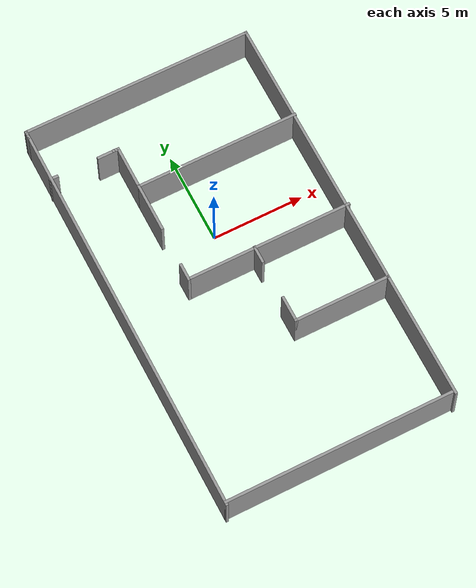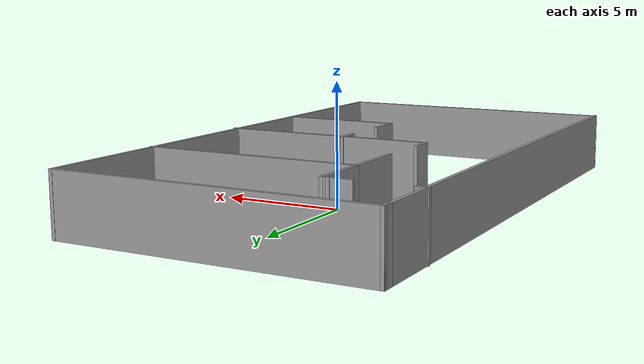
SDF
<?xml version='1.0'?>
<sdf version='1.6'>
  <model name='similar_home'>
    <pose frame=''>-0.008019 -2.54677 0 0 -0 0</pose>
    <link name='Wall_36'>
      <collision name='Wall_36_Collision'>
        <geometry>
          <box>
            <size>22.2411 0.15 2.5</size>
          </box>
        </geometry>
        <pose frame=''>0 0 1.25 0 -0 0</pose>
      </collision>
      <visual name='Wall_36_Visual'>
        <pose frame=''>0 0 1.25 0 -0 0</pose>
        <geometry>
          <box>
            <size>22.2411 0.15 2.5</size>
          </box>
        </geometry>
        <material>
          <script>
            <uri>file://media/materials/scripts/gazebo.material</uri>
            <name>Gazebo/Grey</name>
          </script>
          <ambient>1 1 1 1</ambient>
        </material>
        <meta>
          <layer>0</layer>
        </meta>
      </visual>
      <pose frame=''>-6.31271 -0.124102 0 0 -0 -1.5708</pose>
    </link>
    <link name='Wall_37'>
      <collision name='Wall_37_Collision'>
        <geometry>
          <box>
            <size>12.6951 0.15 2.5</size>
          </box>
        </geometry>
        <pose frame=''>0 0 1.25 0 -0 0</pose>
      </collision>
      <visual name='Wall_37_Visual'>
        <pose frame=''>0 0 1.25 0 -0 0</pose>
        <geometry>
          <box>
            <size>12.6951 0.15 2.5</size>
          </box>
        </geometry>
        <material>
          <script>
            <uri>file://media/materials/scripts/gazebo.material</uri>
            <name>Gazebo/Grey</name>
          </script>
          <ambient>1 1 1 1</ambient>
        </material>
        <meta>
          <layer>0</layer>
        </meta>
      </visual>
      <pose frame=''>-0.040178 -11.0513 0 0 -0 -0.000367</pose>
    </link>
    <link name='Wall_38'>
      <collision name='Wall_38_Collision'>
        <geometry>
          <box>
            <size>22.4985 0.15 2.5</size>
          </box>
        </geometry>
        <pose frame=''>0 0 1.25 0 -0 0</pose>
      </collision>
      <visual name='Wall_38_Visual'>
        <pose frame=''>0 0 1.25 0 -0 0</pose>
        <geometry>
          <box>
            <size>22.4985 0.15 2.5</size>
          </box>
        </geometry>
        <material>
          <script>
            <uri>file://media/materials/scripts/gazebo.material</uri>
            <name>Gazebo/Grey</name>
          </script>
          <ambient>1 1 1 1</ambient>
        </material>
        <meta>
          <layer>0</layer>
        </meta>
      </visual>
      <pose frame=''>6.23236 0 0 0 -0 1.5708</pose>
    </link>
    <link name='Wall_39'>
      <collision name='Wall_39_Collision'>
        <geometry>
          <box>
            <size>12.6951 0.15 2.5</size>
          </box>
        </geometry>
        <pose frame=''>0 0 1.25 0 -0 0</pose>
      </collision>
      <visual name='Wall_39_Visual'>
        <pose frame=''>0 0 1.25 0 -0 0</pose>
        <geometry>
          <box>
            <size>12.6951 0.15 2.5</size>
          </box>
        </geometry>
        <material>
          <script>
            <uri>file://media/materials/scripts/gazebo.material</uri>
            <name>Gazebo/Grey</name>
          </script>
          <ambient>1 1 1 1</ambient>
        </material>
        <meta>
          <layer>0</layer>
        </meta>
      </visual>
      <pose frame=''>-0.040178 11.1692 0 0 -0 3.14123</pose>
    </link>
    <link name='Wall_40'>
      <collision name='Wall_40_Collision'>
        <geometry>
          <box>
            <size>0.5 0.15 2.5</size>
          </box>
        </geometry>
        <pose frame=''>0 0 1.25 0 -0 0</pose>
      </collision>
      <visual name='Wall_40_Visual'>
        <pose frame=''>0 0 1.25 0 -0 0</pose>
        <geometry>
          <box>
            <size>0.5 0.15 2.5</size>
          </box>
        </geometry>
        <material>
          <script>
            <uri>file://media/materials/scripts/gazebo.material</uri>
            <name>Gazebo/Grey</name>
          </script>
          <ambient>1 1 1 1</ambient>
        </material>
        <meta>
          <layer>0</layer>
        </meta>
      </visual>
      <pose frame=''>-6.31271 10.9965 0 0 -0 -1.5708</pose>
    </link>
    <link name='Wall_42'>
      <collision name='Wall_42_Collision'>
        <geometry>
          <box>
            <size>0.5 0.15 2.5</size>
          </box>
        </geometry>
        <pose frame=''>0 0 1.25 0 -0 0</pose>
      </collision>
      <visual name='Wall_42_Visual'>
        <pose frame=''>0 0 1.25 0 -0 0</pose>
        <geometry>
          <box>
            <size>0.5 0.15 2.5</size>
          </box>
        </geometry>
        <material>
          <script>
            <uri>file://media/materials/scripts/gazebo.material</uri>
            <name>Gazebo/Grey</name>
          </script>
          <ambient>1 1 1 1</ambient>
        </material>
        <meta>
          <layer>0</layer>
        </meta>
      </visual>
      <pose frame=''>-6.17716 8.22602 0 0 -0 0</pose>
    </link>
    <link name='Wall_47'>
      <collision name='Wall_47_Collision'>
        <geometry>
          <box>
            <size>0.15 0.15 2.5</size>
          </box>
        </geometry>
        <pose frame=''>0 0 1.25 0 -0 0</pose>
      </collision>
      <visual name='Wall_47_Visual'>
        <pose frame=''>0 0 1.25 0 -0 0</pose>
        <geometry>
          <box>
            <size>0.15 0.15 2.5</size>
          </box>
        </geometry>
        <material>
          <script>
            <uri>file://media/materials/scripts/gazebo.material</uri>
            <name>Gazebo/Grey</name>
          </script>
          <ambient>1 1 1 1</ambient>
        </material>
        <meta>
          <layer>0</layer>
        </meta>
      </visual>
      <pose frame=''>-2.82715 8.20113 0 0 -0 0</pose>
    </link>
    <link name='Wall_52'>
      <collision name='Wall_52_Collision'>
        <geometry>
          <box>
            <size>1.25 0.15 2.5</size>
          </box>
        </geometry>
        <pose frame=''>0 0 1.25 0 -0 0</pose>
      </collision>
      <visual name='Wall_52_Visual'>
        <pose frame=''>0 0 1.25 0 -0 0</pose>
        <geometry>
          <box>
            <size>1.25 0.15 2.5</size>
          </box>
        </geometry>
        <material>
          <script>
            <uri>file://media/materials/scripts/gazebo.material</uri>
            <name>Gazebo/Grey</name>
          </script>
          <ambient>1 1 1 1</ambient>
        </material>
        <meta>
          <layer>0</layer>
        </meta>
      </visual>
      <pose frame=''>-3.12258 8.19348 0 0 -0 0</pose>
    </link>
    <link name='Wall_53'>
      <collision name='Wall_53_Collision'>
        <geometry>
          <box>
            <size>2.5 0.15 2.5</size>
          </box>
        </geometry>
        <pose frame=''>0 0 1.25 0 -0 0</pose>
      </collision>
      <visual name='Wall_53_Visual'>
        <pose frame=''>0 0 1.25 0 -0 0</pose>
        <geometry>
          <box>
            <size>2.5 0.15 2.5</size>
          </box>
        </geometry>
        <material>
          <script>
            <uri>file://media/materials/scripts/gazebo.material</uri>
            <name>Gazebo/Grey</name>
          </script>
          <ambient>1 1 1 1</ambient>
        </material>
        <meta>
          <layer>0</layer>
        </meta>
      </visual>
      <pose frame=''>-2.57258 7.01849 0 0 -0 -1.5708</pose>
    </link>
    <link name='Wall_54'>
      <collision name='Wall_54_Collision'>
        <geometry>
          <box>
            <size>9 0.15 2.5</size>
          </box>
        </geometry>
        <pose frame=''>0 0 1.25 0 -0 0</pose>
      </collision>
      <visual name='Wall_54_Visual'>
        <pose frame=''>0 0 1.25 0 -0 0</pose>
        <geometry>
          <box>
            <size>9 0.15 2.5</size>
          </box>
        </geometry>
        <material>
          <script>
            <uri>file://media/materials/scripts/gazebo.material</uri>
            <name>Gazebo/Grey</name>
          </script>
          <ambient>1 1 1 1</ambient>
        </material>
        <meta>
          <layer>0</layer>
        </meta>
      </visual>
      <pose frame=''>1.85242 5.84348 0 0 -0 0</pose>
    </link>
    <link name='Wall_56'>
      <collision name='Wall_56_Collision'>
        <geometry>
          <box>
            <size>2.75 0.15 2.5</size>
          </box>
        </geometry>
        <pose frame=''>0 0 1.25 0 -0 0</pose>
      </collision>
      <visual name='Wall_56_Visual'>
        <pose frame=''>0 0 1.25 0 -0 0</pose>
        <geometry>
          <box>
            <size>2.75 0.15 2.5</size>
          </box>
        </geometry>
        <material>
          <script>
            <uri>file://media/materials/scripts/gazebo.material</uri>
            <name>Gazebo/Grey</name>
          </script>
          <ambient>1 1 1 1</ambient>
        </material>
        <meta>
          <layer>0</layer>
        </meta>
      </visual>
      <pose frame=''>-2.57258 4.54348 0 0 -0 -1.5708</pose>
    </link>
    <link name='Wall_58'>
      <collision name='Wall_58_Collision'>
        <geometry>
          <box>
            <size>9 0.15 2.5</size>
          </box>
        </geometry>
        <pose frame=''>0 0 1.25 0 -0 0</pose>
      </collision>
      <visual name='Wall_58_Visual'>
        <pose frame=''>0 0 1.25 0 -0 0</pose>
        <geometry>
          <box>
            <size>9 0.15 2.5</size>
          </box>
        </geometry>
        <material>
          <script>
            <uri>file://media/materials/scripts/gazebo.material</uri>
            <name>Gazebo/Grey</name>
          </script>
          <ambient>1 1 1 1</ambient>
        </material>
        <meta>
          <layer>0</layer>
        </meta>
      </visual>
      <pose frame=''>1.92716 0.163391 0 0 -0 0</pose>
    </link>
    <link name='Wall_60'>
      <collision name='Wall_60_Collision'>
        <geometry>
          <box>
            <size>1 0.15 2.5</size>
          </box>
        </geometry>
        <pose frame=''>0 0 1.25 0 -0 0</pose>
      </collision>
      <visual name='Wall_60_Visual'>
        <pose frame=''>0 0 1.25 0 -0 0</pose>
        <geometry>
          <box>
            <size>1 0.15 2.5</size>
          </box>
        </geometry>
        <material>
          <script>
            <uri>file://media/materials/scripts/gazebo.material</uri>
            <name>Gazebo/Grey</name>
          </script>
          <ambient>1 1 1 1</ambient>
        </material>
        <meta>
          <layer>0</layer>
        </meta>
      </visual>
      <pose frame=''>-2.62983 0.58581 0 0 -0 -1.5708</pose>
    </link>
    <link name='Wall_62'>
      <collision name='Wall_62_Collision'>
        <geometry>
          <box>
            <size>1 0.15 2.5</size>
          </box>
        </geometry>
        <pose frame=''>0 0 1.25 0 -0 0</pose>
      </collision>
      <visual name='Wall_62_Visual'>
        <pose frame=''>0 0 1.25 0 -0 0</pose>
        <geometry>
          <box>
            <size>1 0.15 2.5</size>
          </box>
        </geometry>
        <material>
          <script>
            <uri>file://media/materials/scripts/gazebo.material</uri>
            <name>Gazebo/Grey</name>
          </script>
          <ambient>1 1 1 1</ambient>
        </material>
        <meta>
          <layer>0</layer>
        </meta>
      </visual>
      <pose frame=''>1.07295 -0.233522 0 0 -0 -1.5708</pose>
    </link>
    <link name='Wall_64'>
      <collision name='Wall_64_Collision'>
        <geometry>
          <box>
            <size>1.5 0.15 2.5</size>
          </box>
        </geometry>
        <pose frame=''>0 0 1.25 0 -0 0</pose>
      </collision>
      <visual name='Wall_64_Visual'>
        <pose frame=''>0 0 1.25 0 -0 0</pose>
        <geometry>
          <box>
            <size>1.5 0.15 2.5</size>
          </box>
        </geometry>
        <material>
          <script>
            <uri>file://media/materials/scripts/gazebo.material</uri>
            <name>Gazebo/Grey</name>
          </script>
          <ambient>1 1 1 1</ambient>
        </material>
        <meta>
          <layer>0</layer>
        </meta>
      </visual>
      <pose frame=''>1.07295 -3.56046 0 0 -0 -1.5708</pose>
    </link>
    <link name='Wall_65'>
      <collision name='Wall_65_Collision'>
        <geometry>
          <box>
            <size>5.25 0.15 2.5</size>
          </box>
        </geometry>
        <pose frame=''>0 0 1.25 0 -0 0</pose>
      </collision>
      <visual name='Wall_65_Visual'>
        <pose frame=''>0 0 1.25 0 -0 0</pose>
        <geometry>
          <box>
            <size>5.25 0.15 2.5</size>
          </box>
        </geometry>
        <material>
          <script>
            <uri>file://media/materials/scripts/gazebo.material</uri>
            <name>Gazebo/Grey</name>
          </script>
          <ambient>1 1 1 1</ambient>
        </material>
        <meta>
          <layer>0</layer>
        </meta>
      </visual>
      <pose frame=''>3.62295 -4.23546 0 0 -0 0</pose>
    </link>
    <static>1</static>
  </model>
</sdf>
